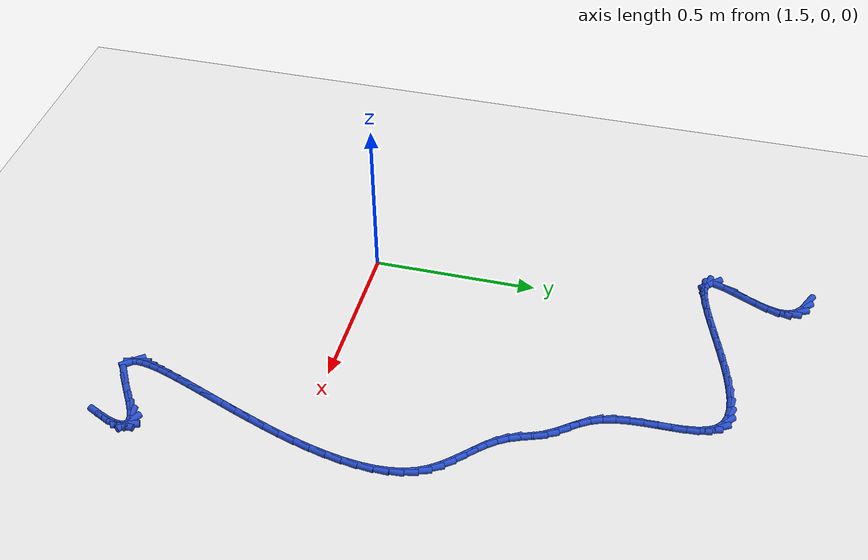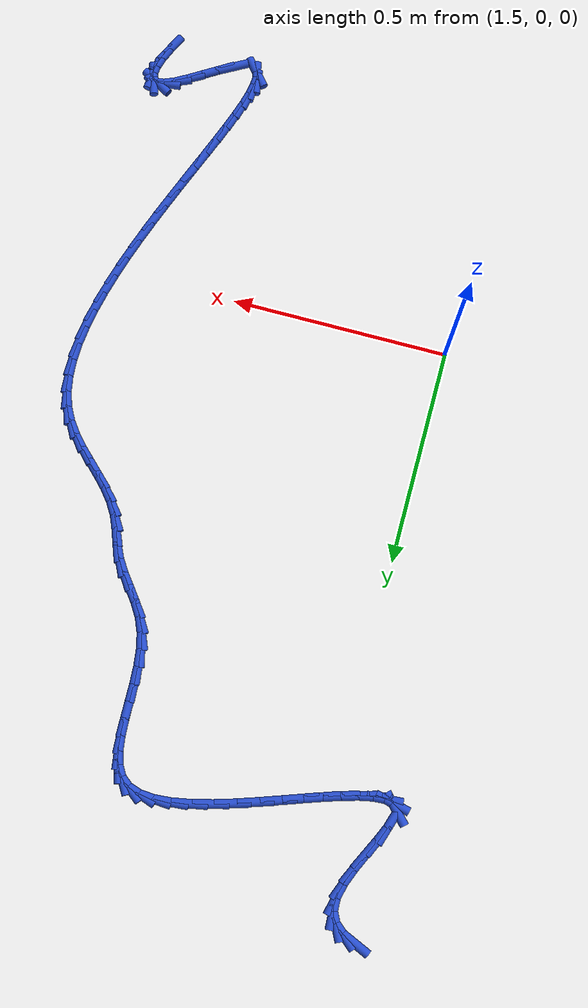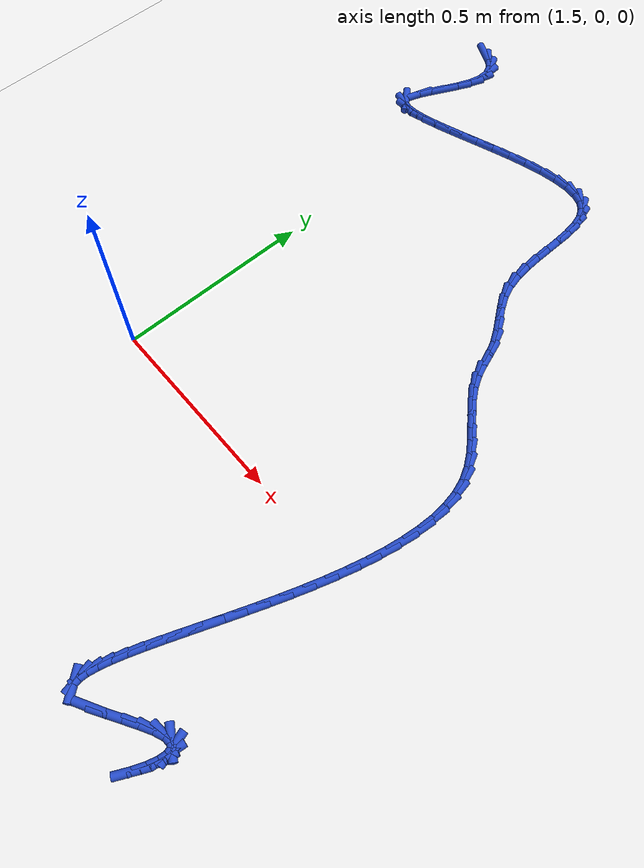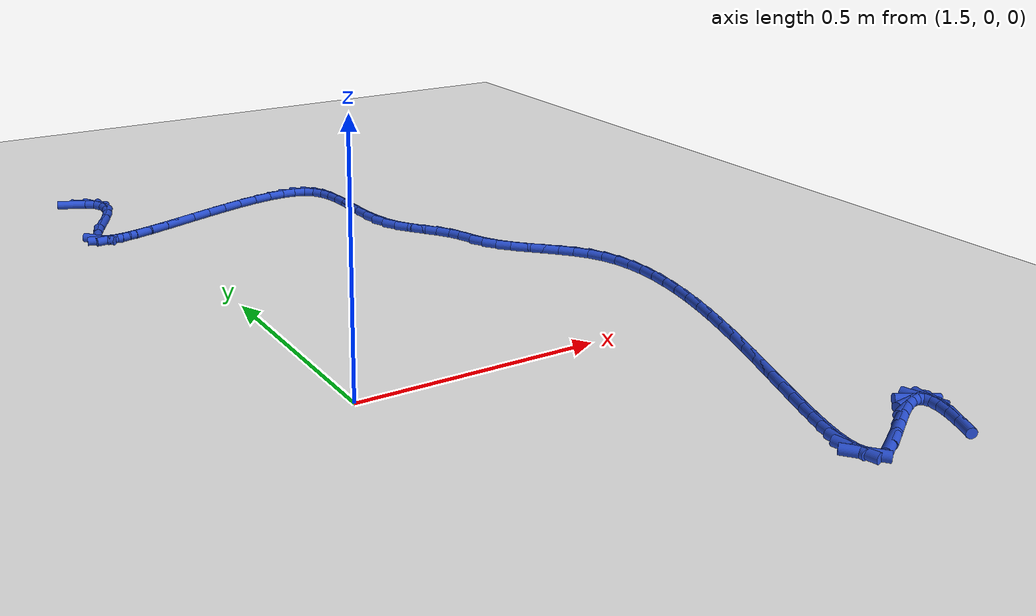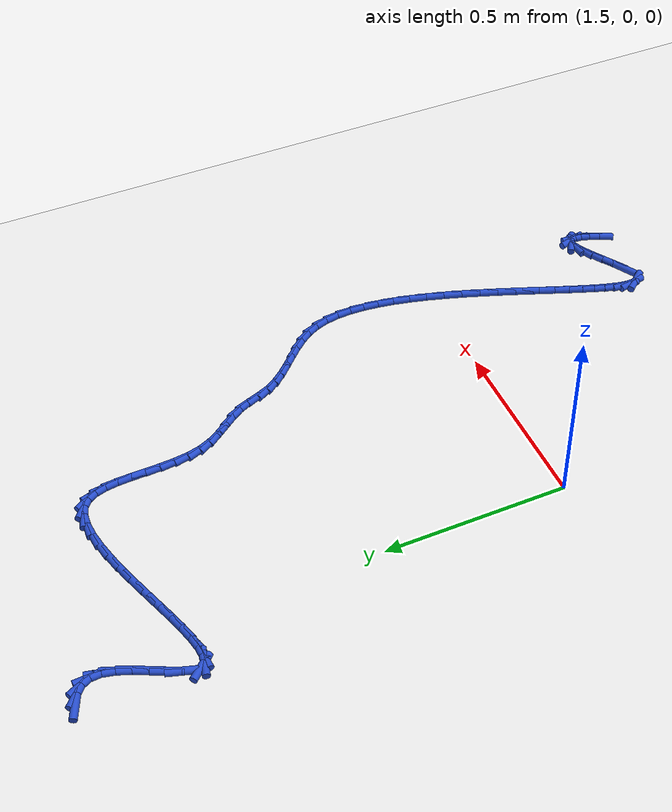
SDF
<sdf version="1.6">
 <world name="default">
  <model name="ground_plane">
   <static>1</static>
   <link name="link">
    <collision name="collision">
     <geometry><plane><normal>0 0 1</normal><size>100 100</size></plane></geometry>
     <surface><friction><ode><mu>100</mu><mu2>50</mu2></ode></friction></surface>
    </collision>
    <visual name="visual">
     <cast_shadows>0</cast_shadows>
     <geometry><plane><normal>0 0 1</normal><size>100 100</size></plane></geometry>
     <material>
      <script><uri>file://media/materials/scripts/gazebo.material</uri><name>Gazebo/WhiteGlow</name></script>
     </material>
    </visual>
   </link>
  </model>
  <model name="line">
   <link name="link_63">
    <pose>1.38146588234786 1.3162740339816177 0.01 0 1.57 -0.4110612394811182</pose>
    <collision name="collision">
     <geometry><cylinder><radius>0.01</radius><length>0.08</length></cylinder></geometry>
    </collision>
    <visual name="visual">
     <material>
      <script><name>Gazebo/Blue</name><uri>file://media/materials/scripts/gazebo.material</uri></script>
     </material>
     <geometry><cylinder><radius>0.01</radius><length>0.08</length></cylinder></geometry>
    </visual>
   </link>
   <link name="link_64">
    <pose>1.4082318114390402 1.3046069394834985 0.01 0 1.57 -0.7160803997855721</pose>
    <collision name="collision">
     <geometry><cylinder><radius>0.01</radius><length>0.08</length></cylinder></geometry>
    </collision>
    <visual name="visual">
     <material>
      <script><name>Gazebo/Blue</name><uri>file://media/materials/scripts/gazebo.material</uri></script>
     </material>
     <geometry><cylinder><radius>0.01</radius><length>0.08</length></cylinder></geometry>
    </visual>
   </link>
   <link name="link_65">
    <pose>1.4276790672948225 1.2876847760491377 0.01 0 1.57 -1.1166643688333866</pose>
    <collision name="collision">
     <geometry><cylinder><radius>0.01</radius><length>0.08</length></cylinder></geometry>
    </collision>
    <visual name="visual">
     <material>
      <script><name>Gazebo/Blue</name><uri>file://media/materials/scripts/gazebo.material</uri></script>
     </material>
     <geometry><cylinder><radius>0.01</radius><length>0.08</length></cylinder></geometry>
    </visual>
   </link>
   <link name="link_66">
    <pose>1.4385907269198408 1.2653322108594105 0.01 0 1.57 -1.52751569397766</pose>
    <collision name="collision">
     <geometry><cylinder><radius>0.01</radius><length>0.08</length></cylinder></geometry>
    </collision>
    <visual name="visual">
     <material>
      <script><name>Gazebo/Blue</name><uri>file://media/materials/scripts/gazebo.material</uri></script>
     </material>
     <geometry><cylinder><radius>0.01</radius><length>0.08</length></cylinder></geometry>
    </visual>
   </link>
   <link name="link_67">
    <pose>1.4398003749811532 1.2374007186718072 0.01 0 1.57 1.3351703215894337</pose>
    <collision name="collision">
     <geometry><cylinder><radius>0.01</radius><length>0.08</length></cylinder></geometry>
    </collision>
    <visual name="visual">
     <material>
      <script><name>Gazebo/Blue</name><uri>file://media/materials/scripts/gazebo.material</uri></script>
     </material>
     <geometry><cylinder><radius>0.01</radius><length>0.08</length></cylinder></geometry>
    </visual>
   </link>
   <link name="link_68">
    <pose>1.431949754938029 1.2047014772478541 0.01 0 1.57 1.1945654742467418</pose>
    <collision name="collision">
     <geometry><cylinder><radius>0.01</radius><length>0.08</length></cylinder></geometry>
    </collision>
    <visual name="visual">
     <material>
      <script><name>Gazebo/Blue</name><uri>file://media/materials/scripts/gazebo.material</uri></script>
     </material>
     <geometry><cylinder><radius>0.01</radius><length>0.08</length></cylinder></geometry>
    </visual>
   </link>
   <link name="link_69">
    <pose>1.4179433674102047 1.1692466511504918 0.01 0 1.57 1.1283277954971953</pose>
    <collision name="collision">
     <geometry><cylinder><radius>0.01</radius><length>0.08</length></cylinder></geometry>
    </collision>
    <visual name="visual">
     <material>
      <script><name>Gazebo/Blue</name><uri>file://media/materials/scripts/gazebo.material</uri></script>
     </material>
     <geometry><cylinder><radius>0.01</radius><length>0.08</length></cylinder></geometry>
    </visual>
   </link>
   <link name="link_70">
    <pose>1.4008285763501114 1.133124231452003 0.01 0 1.57 1.1111953745332535</pose>
    <collision name="collision">
     <geometry><cylinder><radius>0.01</radius><length>0.08</length></cylinder></geometry>
    </collision>
    <visual name="visual">
     <material>
      <script><name>Gazebo/Blue</name><uri>file://media/materials/scripts/gazebo.material</uri></script>
     </material>
     <geometry><cylinder><radius>0.01</radius><length>0.08</length></cylinder></geometry>
    </visual>
   </link>
   <link name="link_71">
    <pose>1.3836527457101795 1.0984222092246725 0.01 0 1.57 1.1438877256201196</pose>
    <collision name="collision">
     <geometry><cylinder><radius>0.01</radius><length>0.08</length></cylinder></geometry>
    </collision>
    <visual name="visual">
     <material>
      <script><name>Gazebo/Blue</name><uri>file://media/materials/scripts/gazebo.material</uri></script>
     </material>
     <geometry><cylinder><radius>0.01</radius><length>0.08</length></cylinder></geometry>
    </visual>
   </link>
   <link name="link_72">
    <pose>1.3694632394428397 1.0672285755407835 0.01 0 1.57 1.2623449579647152</pose>
    <collision name="collision">
     <geometry><cylinder><radius>0.01</radius><length>0.08</length></cylinder></geometry>
    </collision>
    <visual name="visual">
     <material>
      <script><name>Gazebo/Blue</name><uri>file://media/materials/scripts/gazebo.material</uri></script>
     </material>
     <geometry><cylinder><radius>0.01</radius><length>0.08</length></cylinder></geometry>
    </visual>
   </link>
   <link name="link_74">
    <pose>1.3619478165530037 1.0235063355506058 0.01 0 1.57 -0.8294352258811661</pose>
    <collision name="collision">
     <geometry><cylinder><radius>0.01</radius><length>0.08</length></cylinder></geometry>
    </collision>
    <visual name="visual">
     <material>
      <script><name>Gazebo/Blue</name><uri>file://media/materials/scripts/gazebo.material</uri></script>
     </material>
     <geometry><cylinder><radius>0.01</radius><length>0.08</length></cylinder></geometry>
    </visual>
   </link>
   <link name="link_75">
    <pose>1.3716715003988025 1.0128861896356736 0.01 0 1.57 -0.22243288934570224</pose>
    <collision name="collision">
     <geometry><cylinder><radius>0.01</radius><length>0.08</length></cylinder></geometry>
    </collision>
    <visual name="visual">
     <material>
      <script><name>Gazebo/Blue</name><uri>file://media/materials/scripts/gazebo.material</uri></script>
     </material>
     <geometry><cylinder><radius>0.01</radius><length>0.08</length></cylinder></geometry>
    </visual>
   </link>
   <link name="link_76">
    <pose>1.389492525996471 1.0088555126727112 0.01 0 1.57 0.06553578116865108</pose>
    <collision name="collision">
     <geometry><cylinder><radius>0.01</radius><length>0.08</length></cylinder></geometry>
    </collision>
    <visual name="visual">
     <material>
      <script><name>Gazebo/Blue</name><uri>file://media/materials/scripts/gazebo.material</uri></script>
     </material>
     <geometry><cylinder><radius>0.01</radius><length>0.08</length></cylinder></geometry>
    </visual>
   </link>
   <link name="link_77">
    <pose>1.4144144722168281 1.0104911341885925 0.01 0 1.57 0.202765433576069</pose>
    <collision name="collision">
     <geometry><cylinder><radius>0.01</radius><length>0.08</length></cylinder></geometry>
    </collision>
    <visual name="visual">
     <material>
      <script><name>Gazebo/Blue</name><uri>file://media/materials/scripts/gazebo.material</uri></script>
     </material>
     <geometry><cylinder><radius>0.01</radius><length>0.08</length></cylinder></geometry>
    </visual>
   </link>
   <link name="link_78">
    <pose>1.445440917930695 1.0168698837101922 0.01 0 1.57 0.27508718112653463</pose>
    <collision name="collision">
     <geometry><cylinder><radius>0.01</radius><length>0.08</length></cylinder></geometry>
    </collision>
    <visual name="visual">
     <material>
      <script><name>Gazebo/Blue</name><uri>file://media/materials/scripts/gazebo.material</uri></script>
     </material>
     <geometry><cylinder><radius>0.01</radius><length>0.08</length></cylinder></geometry>
    </visual>
   </link>
   <link name="link_79">
    <pose>1.4815754420088896 1.0270685907643837 0.01 0 1.57 0.3145798634617396</pose>
    <collision name="collision">
     <geometry><cylinder><radius>0.01</radius><length>0.08</length></cylinder></geometry>
    </collision>
    <visual name="visual">
     <material>
      <script><name>Gazebo/Blue</name><uri>file://media/materials/scripts/gazebo.material</uri></script>
     </material>
     <geometry><cylinder><radius>0.01</radius><length>0.08</length></cylinder></geometry>
    </visual>
   </link>
   <link name="link_80">
    <pose>1.5218216233222324 1.0401640848780418 0.01 0 1.57 0.33446686454200925</pose>
    <collision name="collision">
     <geometry><cylinder><radius>0.01</radius><length>0.08</length></cylinder></geometry>
    </collision>
    <visual name="visual">
     <material>
      <script><name>Gazebo/Blue</name><uri>file://media/materials/scripts/gazebo.material</uri></script>
     </material>
     <geometry><cylinder><radius>0.01</radius><length>0.08</length></cylinder></geometry>
    </visual>
   </link>
   <link name="link_81">
    <pose>1.5651830407415421 1.0552331955780403 0.01 0 1.57 0.3406158648645442</pose>
    <collision name="collision">
     <geometry><cylinder><radius>0.01</radius><length>0.08</length></cylinder></geometry>
    </collision>
    <visual name="visual">
     <material>
      <script><name>Gazebo/Blue</name><uri>file://media/materials/scripts/gazebo.material</uri></script>
     </material>
     <geometry><cylinder><radius>0.01</radius><length>0.08</length></cylinder></geometry>
    </visual>
   </link>
   <link name="link_82">
    <pose>1.6106632731376398 1.0713527523912543 0.01 0 1.57 0.33544919490871633</pose>
    <collision name="collision">
     <geometry><cylinder><radius>0.01</radius><length>0.08</length></cylinder></geometry>
    </collision>
    <visual name="visual">
     <material>
      <script><name>Gazebo/Blue</name><uri>file://media/materials/scripts/gazebo.material</uri></script>
     </material>
     <geometry><cylinder><radius>0.01</radius><length>0.08</length></cylinder></geometry>
    </visual>
   </link>
   <link name="link_83">
    <pose>1.6572658993813447 1.087599584844557 0.01 0 1.57 0.3193360513407432</pose>
    <collision name="collision">
     <geometry><cylinder><radius>0.01</radius><length>0.08</length></cylinder></geometry>
    </collision>
    <visual name="visual">
     <material>
      <script><name>Gazebo/Blue</name><uri>file://media/materials/scripts/gazebo.material</uri></script>
     </material>
     <geometry><cylinder><radius>0.01</radius><length>0.08</length></cylinder></geometry>
    </visual>
   </link>
   <link name="link_84">
    <pose>1.7039944983434754 1.103050522464823 0.01 0 1.57 0.29094510941008966</pose>
    <collision name="collision">
     <geometry><cylinder><radius>0.01</radius><length>0.08</length></cylinder></geometry>
    </collision>
    <visual name="visual">
     <material>
      <script><name>Gazebo/Blue</name><uri>file://media/materials/scripts/gazebo.material</uri></script>
     </material>
     <geometry><cylinder><radius>0.01</radius><length>0.08</length></cylinder></geometry>
    </visual>
   </link>
   <link name="link_85">
    <pose>1.7498526488948518 1.1167823947789264 0.01 0 1.57 0.24694207028499693</pose>
    <collision name="collision">
     <geometry><cylinder><radius>0.01</radius><length>0.08</length></cylinder></geometry>
    </collision>
    <visual name="visual">
     <material>
      <script><name>Gazebo/Blue</name><uri>file://media/materials/scripts/gazebo.material</uri></script>
     </material>
     <geometry><cylinder><radius>0.01</radius><length>0.08</length></cylinder></geometry>
    </visual>
   </link>
   <link name="link_86">
    <pose>1.7938439299062958 1.127872031313742 0.01 0 1.57 0.1809456920667266</pose>
    <collision name="collision">
     <geometry><cylinder><radius>0.01</radius><length>0.08</length></cylinder></geometry>
    </collision>
    <visual name="visual">
     <material>
      <script><name>Gazebo/Blue</name><uri>file://media/materials/scripts/gazebo.material</uri></script>
     </material>
     <geometry><cylinder><radius>0.01</radius><length>0.08</length></cylinder></geometry>
    </visual>
   </link>
   <link name="link_87">
    <pose>1.8349719202486237 1.1353962615961433 0.01 0 1.57 0.08127465651905086</pose>
    <collision name="collision">
     <geometry><cylinder><radius>0.01</radius><length>0.08</length></cylinder></geometry>
    </collision>
    <visual name="visual">
     <material>
      <script><name>Gazebo/Blue</name><uri>file://media/materials/scripts/gazebo.material</uri></script>
     </material>
     <geometry><cylinder><radius>0.01</radius><length>0.08</length></cylinder></geometry>
    </visual>
   </link>
   <link name="link_88">
    <pose>1.8722401987926565 1.138431915153005 0.01 0 1.57 -0.07317783989855912</pose>
    <collision name="collision">
     <geometry><cylinder><radius>0.01</radius><length>0.08</length></cylinder></geometry>
    </collision>
    <visual name="visual">
     <material>
      <script><name>Gazebo/Blue</name><uri>file://media/materials/scripts/gazebo.material</uri></script>
     </material>
     <geometry><cylinder><radius>0.01</radius><length>0.08</length></cylinder></geometry>
    </visual>
   </link>
   <link name="link_89">
    <pose>1.904652344409214 1.136055821511201 0.01 0 1.57 -0.31692472183013215</pose>
    <collision name="collision">
     <geometry><cylinder><radius>0.01</radius><length>0.08</length></cylinder></geometry>
    </collision>
    <visual name="visual">
     <material>
      <script><name>Gazebo/Blue</name><uri>file://media/materials/scripts/gazebo.material</uri></script>
     </material>
     <geometry><cylinder><radius>0.01</radius><length>0.08</length></cylinder></geometry>
    </visual>
   </link>
   <link name="link_90">
    <pose>1.9312119359691162 1.127344810197606 0.01 0 1.57 -0.6757893627709982</pose>
    <collision name="collision">
     <geometry><cylinder><radius>0.01</radius><length>0.08</length></cylinder></geometry>
    </collision>
    <visual name="visual">
     <material>
      <script><name>Gazebo/Blue</name><uri>file://media/materials/scripts/gazebo.material</uri></script>
     </material>
     <geometry><cylinder><radius>0.01</radius><length>0.08</length></cylinder></geometry>
    </visual>
   </link>
   <link name="link_91">
    <pose>1.9510199143903584 1.111464340828231 0.01 0 1.57 -1.0370361517819378</pose>
    <collision name="collision">
     <geometry><cylinder><radius>0.01</radius><length>0.08</length></cylinder></geometry>
    </collision>
    <visual name="visual">
     <material>
      <script><name>Gazebo/Blue</name><uri>file://media/materials/scripts/gazebo.material</uri></script>
     </material>
     <geometry><cylinder><radius>0.01</radius><length>0.08</length></cylinder></geometry>
    </visual>
   </link>
   <link name="link_92">
    <pose>1.9644502683308276 1.0887387469123089 0.01 0 1.57 -1.2861083012736771</pose>
    <collision name="collision">
     <geometry><cylinder><radius>0.01</radius><length>0.08</length></cylinder></geometry>
    </collision>
    <visual name="visual">
     <material>
      <script><name>Gazebo/Blue</name><uri>file://media/materials/scripts/gazebo.material</uri></script>
     </material>
     <geometry><cylinder><radius>0.01</radius><length>0.08</length></cylinder></geometry>
    </visual>
   </link>
   <link name="link_93">
    <pose>1.9727707484949444 1.060305966563222 0.01 0 1.57 -1.4353014730007148</pose>
    <collision name="collision">
     <geometry><cylinder><radius>0.01</radius><length>0.08</length></cylinder></geometry>
    </collision>
    <visual name="visual">
     <material>
      <script><name>Gazebo/Blue</name><uri>file://media/materials/scripts/gazebo.material</uri></script>
     </material>
     <geometry><cylinder><radius>0.01</radius><length>0.08</length></cylinder></geometry>
    </visual>
   </link>
   <link name="link_94">
    <pose>1.977267622506675 1.0273207941158207 0.01 0 1.57 -1.5169894276503961</pose>
    <collision name="collision">
     <geometry><cylinder><radius>0.01</radius><length>0.08</length></cylinder></geometry>
    </collision>
    <visual name="visual">
     <material>
      <script><name>Gazebo/Blue</name><uri>file://media/materials/scripts/gazebo.material</uri></script>
     </material>
     <geometry><cylinder><radius>0.01</radius><length>0.08</length></cylinder></geometry>
    </visual>
   </link>
   <link name="link_95">
    <pose>1.979227157989987 0.990938023904959 0.01 0 1.57 -1.5524565306420446</pose>
    <collision name="collision">
     <geometry><cylinder><radius>0.01</radius><length>0.08</length></cylinder></geometry>
    </collision>
    <visual name="visual">
     <material>
      <script><name>Gazebo/Blue</name><uri>file://media/materials/scripts/gazebo.material</uri></script>
     </material>
     <geometry><cylinder><radius>0.01</radius><length>0.08</length></cylinder></geometry>
    </visual>
   </link>
   <link name="link_96">
    <pose>1.9799356225688467 0.9523124502654885 0.01 0 1.57 -1.5520728990859043</pose>
    <collision name="collision">
     <geometry><cylinder><radius>0.01</radius><length>0.08</length></cylinder></geometry>
    </collision>
    <visual name="visual">
     <material>
      <script><name>Gazebo/Blue</name><uri>file://media/materials/scripts/gazebo.material</uri></script>
     </material>
     <geometry><cylinder><radius>0.01</radius><length>0.08</length></cylinder></geometry>
    </visual>
   </link>
   <link name="link_97">
    <pose>1.980679283867222 0.9125988675322616 0.01 0 1.57 -1.5187552760902108</pose>
    <collision name="collision">
     <geometry><cylinder><radius>0.01</radius><length>0.08</length></cylinder></geometry>
    </collision>
    <visual name="visual">
     <material>
      <script><name>Gazebo/Blue</name><uri>file://media/materials/scripts/gazebo.material</uri></script>
     </material>
     <geometry><cylinder><radius>0.01</radius><length>0.08</length></cylinder></geometry>
    </visual>
   </link>
   <link name="link_98">
    <pose>1.982744409509079 0.87295207004013 0.01 0 1.57 -1.4497814091476202</pose>
    <collision name="collision">
     <geometry><cylinder><radius>0.01</radius><length>0.08</length></cylinder></geometry>
    </collision>
    <visual name="visual">
     <material>
      <script><name>Gazebo/Blue</name><uri>file://media/materials/scripts/gazebo.material</uri></script>
     </material>
     <geometry><cylinder><radius>0.01</radius><length>0.08</length></cylinder></geometry>
    </visual>
   </link>
   <link name="link_99">
    <pose>1.9874172671183854 0.8345268521239458 0.01 0 1.57 -1.3374784938455375</pose>
    <collision name="collision">
     <geometry><cylinder><radius>0.01</radius><length>0.08</length></cylinder></geometry>
    </collision>
    <visual name="visual">
     <material>
      <script><name>Gazebo/Blue</name><uri>file://media/materials/scripts/gazebo.material</uri></script>
     </material>
     <geometry><cylinder><radius>0.01</radius><length>0.08</length></cylinder></geometry>
    </visual>
   </link>
   <link name="link_100">
    <pose>1.9959841243191079 0.7984780081185623 0.01 0 1.57 -1.1741037704281179</pose>
    <collision name="collision">
     <geometry><cylinder><radius>0.01</radius><length>0.08</length></cylinder></geometry>
    </collision>
    <visual name="visual">
     <material>
      <script><name>Gazebo/Blue</name><uri>file://media/materials/scripts/gazebo.material</uri></script>
     </material>
     <geometry><cylinder><radius>0.01</radius><length>0.08</length></cylinder></geometry>
    </visual>
   </link>
   <link name="link_101">
    <pose>2.0096356249442655 0.7658890821615515 0.01 0 1.57 -1.0172007712883406</pose>
    <collision name="collision">
     <geometry><cylinder><radius>0.01</radius><length>0.08</length></cylinder></geometry>
    </collision>
    <visual name="visual">
     <material>
      <script><name>Gazebo/Blue</name><uri>file://media/materials/scripts/gazebo.material</uri></script>
     </material>
     <geometry><cylinder><radius>0.01</radius><length>0.08</length></cylinder></geometry>
    </visual>
   </link>
   <link name="link_102">
    <pose>2.0277870808167755 0.7365208016029207 0.01 0 1.57 -0.9311847909002186</pose>
    <collision name="collision">
     <geometry><cylinder><radius>0.01</radius><length>0.08</length></cylinder></geometry>
    </collision>
    <visual name="visual">
     <material>
      <script><name>Gazebo/Blue</name><uri>file://media/materials/scripts/gazebo.material</uri></script>
     </material>
     <geometry><cylinder><radius>0.01</radius><length>0.08</length></cylinder></geometry>
    </visual>
   </link>
   <link name="link_103">
    <pose>2.0482862716049106 0.7089659106563336 0.01 0 1.57 -0.9214556130622783</pose>
    <collision name="collision">
     <geometry><cylinder><radius>0.01</radius><length>0.08</length></cylinder></geometry>
    </collision>
    <visual name="visual">
     <material>
      <script><name>Gazebo/Blue</name><uri>file://media/materials/scripts/gazebo.material</uri></script>
     </material>
     <geometry><cylinder><radius>0.01</radius><length>0.08</length></cylinder></geometry>
    </visual>
   </link>
   <link name="link_104">
    <pose>2.068927115152473 0.6817770205771035 0.01 0 1.57 -0.9894457167972587</pose>
    <collision name="collision">
     <geometry><cylinder><radius>0.01</radius><length>0.08</length></cylinder></geometry>
    </collision>
    <visual name="visual">
     <material>
      <script><name>Gazebo/Blue</name><uri>file://media/materials/scripts/gazebo.material</uri></script>
     </material>
     <geometry><cylinder><radius>0.01</radius><length>0.08</length></cylinder></geometry>
    </visual>
   </link>
   <link name="link_105">
    <pose>2.0875035293032678 0.653506742620545 0.01 0 1.57 -1.1295151932228582</pose>
    <collision name="collision">
     <geometry><cylinder><radius>0.01</radius><length>0.08</length></cylinder></geometry>
    </collision>
    <visual name="visual">
     <material>
      <script><name>Gazebo/Blue</name><uri>file://media/materials/scripts/gazebo.material</uri></script>
     </material>
     <geometry><cylinder><radius>0.01</radius><length>0.08</length></cylinder></geometry>
    </visual>
   </link>
   <link name="link_106">
    <pose>2.1019957489271084 0.6228254141699873 0.01 0 1.57 -1.2237822130924656</pose>
    <collision name="collision">
     <geometry><cylinder><radius>0.01</radius><length>0.08</length></cylinder></geometry>
    </collision>
    <visual name="visual">
     <material>
      <script><name>Gazebo/Blue</name><uri>file://media/materials/scripts/gazebo.material</uri></script>
     </material>
     <geometry><cylinder><radius>0.01</radius><length>0.08</length></cylinder></geometry>
    </visual>
   </link>
   <link name="link_107">
    <pose>2.1136891624885688 0.5904917643330045 0.01 0 1.57 -1.178182355609783</pose>
    <collision name="collision">
     <geometry><cylinder><radius>0.01</radius><length>0.08</length></cylinder></geometry>
    </collision>
    <visual name="visual">
     <material>
      <script><name>Gazebo/Blue</name><uri>file://media/materials/scripts/gazebo.material</uri></script>
     </material>
     <geometry><cylinder><radius>0.01</radius><length>0.08</length></cylinder></geometry>
    </visual>
   </link>
   <link name="link_108">
    <pose>2.126706579448025 0.5590573728631456 0.01 0 1.57 -1.0252266744634895</pose>
    <collision name="collision">
     <geometry><cylinder><radius>0.01</radius><length>0.08</length></cylinder></geometry>
    </collision>
    <visual name="visual">
     <material>
      <script><name>Gazebo/Blue</name><uri>file://media/materials/scripts/gazebo.material</uri></script>
     </material>
     <geometry><cylinder><radius>0.01</radius><length>0.08</length></cylinder></geometry>
    </visual>
   </link>
   <link name="link_109">
    <pose>2.1441028451180753 0.5303991831846511 0.01 0 1.57 -0.8928742638511952</pose>
    <collision name="collision">
     <geometry><cylinder><radius>0.01</radius><length>0.08</length></cylinder></geometry>
    </collision>
    <visual name="visual">
     <material>
      <script><name>Gazebo/Blue</name><uri>file://media/materials/scripts/gazebo.material</uri></script>
     </material>
     <geometry><cylinder><radius>0.01</radius><length>0.08</length></cylinder></geometry>
    </visual>
   </link>
   <link name="link_110">
    <pose>2.1652869809702864 0.5040910150664649 0.01 0 1.57 -0.8094926854252864</pose>
    <collision name="collision">
     <geometry><cylinder><radius>0.01</radius><length>0.08</length></cylinder></geometry>
    </collision>
    <visual name="visual">
     <material>
      <script><name>Gazebo/Blue</name><uri>file://media/materials/scripts/gazebo.material</uri></script>
     </material>
     <geometry><cylinder><radius>0.01</radius><length>0.08</length></cylinder></geometry>
    </visual>
   </link>
   <link name="link_111">
    <pose>2.1889536889969627 0.4792554415465158 0.01 0 1.57 -0.773102076718726</pose>
    <collision name="collision">
     <geometry><cylinder><radius>0.01</radius><length>0.08</length></cylinder></geometry>
    </collision>
    <visual name="visual">
     <material>
      <script><name>Gazebo/Blue</name><uri>file://media/materials/scripts/gazebo.material</uri></script>
     </material>
     <geometry><cylinder><radius>0.01</radius><length>0.08</length></cylinder></geometry>
    </visual>
   </link>
   <link name="link_112">
    <pose>2.2137976711904117 0.4550150356627312 0.01 0 1.57 -0.7814725429000222</pose>
    <collision name="collision">
     <geometry><cylinder><radius>0.01</radius><length>0.08</length></cylinder></geometry>
    </collision>
    <visual name="visual">
     <material>
      <script><name>Gazebo/Blue</name><uri>file://media/materials/scripts/gazebo.material</uri></script>
     </material>
     <geometry><cylinder><radius>0.01</radius><length>0.08</length></cylinder></geometry>
    </visual>
   </link>
   <link name="link_113">
    <pose>2.2385136295429398 0.4304923704530395 0.01 0 1.57 -0.8343677760602719</pose>
    <collision name="collision">
     <geometry><cylinder><radius>0.01</radius><length>0.08</length></cylinder></geometry>
    </collision>
    <visual name="visual">
     <material>
      <script><name>Gazebo/Blue</name><uri>file://media/materials/scripts/gazebo.material</uri></script>
     </material>
     <geometry><cylinder><radius>0.01</radius><length>0.08</length></cylinder></geometry>
    </visual>
   </link>
   <link name="link_114">
    <pose>2.2617962660468516 0.40481001895536833 0.01 0 1.57 -0.9329894824157687</pose>
    <collision name="collision">
     <geometry><cylinder><radius>0.01</radius><length>0.08</length></cylinder></geometry>
    </collision>
    <visual name="visual">
     <material>
      <script><name>Gazebo/Blue</name><uri>file://media/materials/scripts/gazebo.material</uri></script>
     </material>
     <geometry><cylinder><radius>0.01</radius><length>0.08</length></cylinder></geometry>
    </visual>
   </link>
   <link name="link_115">
    <pose>2.282340282694453 0.37709055420764526 0.01 0 1.57 -1.0767232830797087</pose>
    <collision name="collision">
     <geometry><cylinder><radius>0.01</radius><length>0.08</length></cylinder></geometry>
    </collision>
    <visual name="visual">
     <material>
      <script><name>Gazebo/Blue</name><uri>file://media/materials/scripts/gazebo.material</uri></script>
     </material>
     <geometry><cylinder><radius>0.01</radius><length>0.08</length></cylinder></geometry>
    </visual>
   </link>
   <link name="link_116">
    <pose>2.2988406233726195 0.346456728218105 0.01 0 1.57 -1.2452394849076576</pose>
    <collision name="collision">
     <geometry><cylinder><radius>0.01</radius><length>0.08</length></cylinder></geometry>
    </collision>
    <visual name="visual">
     <material>
      <script><name>Gazebo/Blue</name><uri>file://media/materials/scripts/gazebo.material</uri></script>
     </material>
     <geometry><cylinder><radius>0.01</radius><length>0.08</length></cylinder></geometry>
    </visual>
   </link>
   <link name="link_117">
    <pose>2.310367756832476 0.31230913221983514 0.01 0 1.57 -1.3921171820196896</pose>
    <collision name="collision">
     <geometry><cylinder><radius>0.01</radius><length>0.08</length></cylinder></geometry>
    </collision>
    <visual name="visual">
     <material>
      <script><name>Gazebo/Blue</name><uri>file://media/materials/scripts/gazebo.material</uri></script>
     </material>
     <geometry><cylinder><radius>0.01</radius><length>0.08</length></cylinder></geometry>
    </visual>
   </link>
   <link name="link_118">
    <pose>2.317126303926747 0.27488748148477077 0.01 0 1.57 -1.5111163441229656</pose>
    <collision name="collision">
     <geometry><cylinder><radius>0.01</radius><length>0.08</length></cylinder></geometry>
    </collision>
    <visual name="visual">
     <material>
      <script><name>Gazebo/Blue</name><uri>file://media/materials/scripts/gazebo.material</uri></script>
     </material>
     <geometry><cylinder><radius>0.01</radius><length>0.08</length></cylinder></geometry>
    </visual>
   </link>
   <link name="link_119">
    <pose>2.319534158919023 0.23458928568089898 0.01 0 1.57 1.5351629460759149</pose>
    <collision name="collision">
     <geometry><cylinder><radius>0.01</radius><length>0.08</length></cylinder></geometry>
    </collision>
    <visual name="visual">
     <material>
      <script><name>Gazebo/Blue</name><uri>file://media/materials/scripts/gazebo.material</uri></script>
     </material>
     <geometry><cylinder><radius>0.01</radius><length>0.08</length></cylinder></geometry>
    </visual>
   </link>
   <link name="link_120">
    <pose>2.3180092160728916 0.19181205447620497 0.01 0 1.57 1.4589162608870774</pose>
    <collision name="collision">
     <geometry><cylinder><radius>0.01</radius><length>0.08</length></cylinder></geometry>
    </collision>
    <visual name="visual">
     <material>
      <script><name>Gazebo/Blue</name><uri>file://media/materials/scripts/gazebo.material</uri></script>
     </material>
     <geometry><cylinder><radius>0.01</radius><length>0.08</length></cylinder></geometry>
    </visual>
   </link>
   <link name="link_121">
    <pose>2.31296936965194 0.14695329753867484 0.01 0 1.57 1.3977201433234263</pose>
    <collision name="collision">
     <geometry><cylinder><radius>0.01</radius><length>0.08</length></cylinder></geometry>
    </collision>
    <visual name="visual">
     <material>
      <script><name>Gazebo/Blue</name><uri>file://media/materials/scripts/gazebo.material</uri></script>
     </material>
     <geometry><cylinder><radius>0.01</radius><length>0.08</length></cylinder></geometry>
    </visual>
   </link>
   <link name="link_122">
    <pose>2.3048325139197576 0.10041052453629452 0.01 0 1.57 1.3483999149790504</pose>
    <collision name="collision">
     <geometry><cylinder><radius>0.01</radius><length>0.08</length></cylinder></geometry>
    </collision>
    <visual name="visual">
     <material>
      <script><name>Gazebo/Blue</name><uri>file://media/materials/scripts/gazebo.material</uri></script>
     </material>
     <geometry><cylinder><radius>0.01</radius><length>0.08</length></cylinder></geometry>
    </visual>
   </link>
   <link name="link_123">
    <pose>2.294016543139933 0.05258124513704909 0.01 0 1.57 1.308553281446863</pose>
    <collision name="collision">
     <geometry><cylinder><radius>0.01</radius><length>0.08</length></cylinder></geometry>
    </collision>
    <visual name="visual">
     <material>
      <script><name>Gazebo/Blue</name><uri>file://media/materials/scripts/gazebo.material</uri></script>
     </material>
     <geometry><cylinder><radius>0.01</radius><length>0.08</length></cylinder></geometry>
    </visual>
   </link>
   <link name="link_124">
    <pose>2.2809393515760537 0.00386296900892592 0.01 0 1.57 1.2764041503940442</pose>
    <collision name="collision">
     <geometry><cylinder><radius>0.01</radius><length>0.08</length></cylinder></geometry>
    </collision>
    <visual name="visual">
     <material>
      <script><name>Gazebo/Blue</name><uri>file://media/materials/scripts/gazebo.material</uri></script>
     </material>
     <geometry><cylinder><radius>0.01</radius><length>0.08</length></cylinder></geometry>
    </visual>
   </link>
   <link name="link_125">
    <pose>2.266018833491709 -0.04534679418008973 0.01 0 1.57 1.2506645103969396</pose>
    <collision name="collision">
     <geometry><cylinder><radius>0.01</radius><length>0.08</length></cylinder></geometry>
    </collision>
    <visual name="visual">
     <material>
      <script><name>Gazebo/Blue</name><uri>file://media/materials/scripts/gazebo.material</uri></script>
     </material>
     <geometry><cylinder><radius>0.01</radius><length>0.08</length></cylinder></geometry>
    </visual>
   </link>
   <link name="link_126">
    <pose>2.249672883150485 -0.09465053476201278 0.01 0 1.57 1.2304280265725156</pose>
    <collision name="collision">
     <geometry><cylinder><radius>0.01</radius><length>0.08</length></cylinder></geometry>
    </collision>
    <visual name="visual">
     <material>
      <script><name>Gazebo/Blue</name><uri>file://media/materials/scripts/gazebo.material</uri></script>
     </material>
     <geometry><cylinder><radius>0.01</radius><length>0.08</length></cylinder></geometry>
    </visual>
   </link>
   <link name="link_127">
    <pose>2.2323193948159723 -0.14365074306885559 0.01 0 1.57 1.2150978248597553</pose>
    <collision name="collision">
     <geometry><cylinder><radius>0.01</radius><length>0.08</length></cylinder></geometry>
    </collision>
    <visual name="visual">
     <material>
      <script><name>Gazebo/Blue</name><uri>file://media/materials/scripts/gazebo.material</uri></script>
     </material>
     <geometry><cylinder><radius>0.01</radius><length>0.08</length></cylinder></geometry>
    </visual>
   </link>
   <link name="link_128">
    <pose>2.214376262751759 -0.19194990943263332 0.01 0 1.57 1.204346188685098</pose>
    <collision name="collision">
     <geometry><cylinder><radius>0.01</radius><length>0.08</length></cylinder></geometry>
    </collision>
    <visual name="visual">
     <material>
      <script><name>Gazebo/Blue</name><uri>file://media/materials/scripts/gazebo.material</uri></script>
     </material>
     <geometry><cylinder><radius>0.01</radius><length>0.08</length></cylinder></geometry>
    </visual>
   </link>
   <link name="link_129">
    <pose>2.1962613812214324 -0.23915052418535984 0.01 0 1.57 1.1981056590028647</pose>
    <collision name="collision">
     <geometry><cylinder><radius>0.01</radius><length>0.08</length></cylinder></geometry>
    </collision>
    <visual name="visual">
     <material>
      <script><name>Gazebo/Blue</name><uri>file://media/materials/scripts/gazebo.material</uri></script>
     </material>
     <geometry><cylinder><radius>0.01</radius><length>0.08</length></cylinder></geometry>
    </visual>
   </link>
   <link name="link_130">
    <pose>2.178392644488582 -0.28485507765904927 0.01 0 1.57 1.1965963820005372</pose>
    <collision name="collision">
     <geometry><cylinder><radius>0.01</radius><length>0.08</length></cylinder></geometry>
    </collision>
    <visual name="visual">
     <material>
      <script><name>Gazebo/Blue</name><uri>file://media/materials/scripts/gazebo.material</uri></script>
     </material>
     <geometry><cylinder><radius>0.01</radius><length>0.08</length></cylinder></geometry>
    </visual>
   </link>
   <link name="link_131">
    <pose>2.1611879468167947 -0.3286660601857156 0.01 0 1.57 1.2004043943137548</pose>
    <collision name="collision">
     <geometry><cylinder><radius>0.01</radius><length>0.08</length></cylinder></geometry>
    </collision>
    <visual name="visual">
     <material>
      <script><name>Gazebo/Blue</name><uri>file://media/materials/scripts/gazebo.material</uri></script>
     </material>
     <geometry><cylinder><radius>0.01</radius><length>0.08</length></cylinder></geometry>
    </visual>
   </link>
   <link name="link_132">
    <pose>2.14506518246966 -0.3701859620973732 0.01 0 1.57 1.2106447475881221</pose>
    <collision name="collision">
     <geometry><cylinder><radius>0.01</radius><length>0.08</length></cylinder></geometry>
    </collision>
    <visual name="visual">
     <material>
      <script><name>Gazebo/Blue</name><uri>file://media/materials/scripts/gazebo.material</uri></script>
     </material>
     <geometry><cylinder><radius>0.01</radius><length>0.08</length></cylinder></geometry>
    </visual>
   </link>
   <link name="link_133">
    <pose>2.1304422457107646 -0.40901727372603675 0.01 0 1.57 1.2292849945272655</pose>
    <collision name="collision">
     <geometry><cylinder><radius>0.01</radius><length>0.08</length></cylinder></geometry>
    </collision>
    <visual name="visual">
     <material>
      <script><name>Gazebo/Blue</name><uri>file://media/materials/scripts/gazebo.material</uri></script>
     </material>
     <geometry><cylinder><radius>0.01</radius><length>0.08</length></cylinder></geometry>
    </visual>
   </link>
   <link name="link_134">
    <pose>2.1177370308036996 -0.44476248540371877 0.01 0 1.57 1.259803717543585</pose>
    <collision name="collision">
     <geometry><cylinder><radius>0.01</radius><length>0.08</length></cylinder></geometry>
    </collision>
    <visual name="visual">
     <material>
      <script><name>Gazebo/Blue</name><uri>file://media/materials/scripts/gazebo.material</uri></script>
     </material>
     <geometry><cylinder><radius>0.01</radius><length>0.08</length></cylinder></geometry>
    </visual>
   </link>
   <link name="link_135">
    <pose>2.1073674320120506 -0.47702408746243385 0.01 0 1.57 1.3086169089596953</pose>
    <collision name="collision">
     <geometry><cylinder><radius>0.01</radius><length>0.08</length></cylinder></geometry>
    </collision>
    <visual name="visual">
     <material>
      <script><name>Gazebo/Blue</name><uri>file://media/materials/scripts/gazebo.material</uri></script>
     </material>
     <geometry><cylinder><radius>0.01</radius><length>0.08</length></cylinder></geometry>
    </visual>
   </link>
   <link name="link_136">
    <pose>2.0997513435994075 -0.5054045702341965 0.01 0 1.57 1.3884326522062613</pose>
    <collision name="collision">
     <geometry><cylinder><radius>0.01</radius><length>0.08</length></cylinder></geometry>
    </collision>
    <visual name="visual">
     <material>
      <script><name>Gazebo/Blue</name><uri>file://media/materials/scripts/gazebo.material</uri></script>
     </material>
     <geometry><cylinder><radius>0.01</radius><length>0.08</length></cylinder></geometry>
    </visual>
   </link>
   <link name="link_137">
    <pose>2.095306659829358 -0.5295064240510206 0.01 0 1.57 1.526791117979028</pose>
    <collision name="collision">
     <geometry><cylinder><radius>0.01</radius><length>0.08</length></cylinder></geometry>
    </collision>
    <visual name="visual">
     <material>
      <script><name>Gazebo/Blue</name><uri>file://media/materials/scripts/gazebo.material</uri></script>
     </material>
     <geometry><cylinder><radius>0.01</radius><length>0.08</length></cylinder></geometry>
    </visual>
   </link>
   <link name="link_138">
    <pose>2.094451274965491 -0.5489321392449203 0.01 0 1.57 -1.3546213118208907</pose>
    <collision name="collision">
     <geometry><cylinder><radius>0.01</radius><length>0.08</length></cylinder></geometry>
    </collision>
    <visual name="visual">
     <material>
      <script><name>Gazebo/Blue</name><uri>file://media/materials/scripts/gazebo.material</uri></script>
     </material>
     <geometry><cylinder><radius>0.01</radius><length>0.08</length></cylinder></geometry>
    </visual>
   </link>
   <link name="link_139">
    <pose>2.0976030832713937 -0.5632842061479095 0.01 0 1.57 -0.8644667029283083</pose>
    <collision name="collision">
     <geometry><cylinder><radius>0.01</radius><length>0.08</length></cylinder></geometry>
    </collision>
    <visual name="visual">
     <material>
      <script><name>Gazebo/Blue</name><uri>file://media/materials/scripts/gazebo.material</uri></script>
     </material>
     <geometry><cylinder><radius>0.01</radius><length>0.08</length></cylinder></geometry>
    </visual>
   </link>
   <link name="link_143">
    <pose>2.1586398460961775 -0.5620061259292134 0.01 0 1.57 0.5126815838449156</pose>
    <collision name="collision">
     <geometry><cylinder><radius>0.01</radius><length>0.08</length></cylinder></geometry>
    </collision>
    <visual name="visual">
     <material>
      <script><name>Gazebo/Blue</name><uri>file://media/materials/scripts/gazebo.material</uri></script>
     </material>
     <geometry><cylinder><radius>0.01</radius><length>0.08</length></cylinder></geometry>
    </visual>
   </link>
   <link name="link_144">
    <pose>2.1874092030826544 -0.5458122974561634 0.01 0 1.57 0.5534258584082278</pose>
    <collision name="collision">
     <geometry><cylinder><radius>0.01</radius><length>0.08</length></cylinder></geometry>
    </collision>
    <visual name="visual">
     <material>
      <script><name>Gazebo/Blue</name><uri>file://media/materials/scripts/gazebo.material</uri></script>
     </material>
     <geometry><cylinder><radius>0.01</radius><length>0.08</length></cylinder></geometry>
    </visual>
   </link>
   <link name="link_145">
    <pose>2.219163968387908 -0.5261932893911365 0.01 0 1.57 0.5535505777711826</pose>
    <collision name="collision">
     <geometry><cylinder><radius>0.01</radius><length>0.08</length></cylinder></geometry>
    </collision>
    <visual name="visual">
     <material>
      <script><name>Gazebo/Blue</name><uri>file://media/materials/scripts/gazebo.material</uri></script>
     </material>
     <geometry><cylinder><radius>0.01</radius><length>0.08</length></cylinder></geometry>
    </visual>
   </link>
   <link name="link_146">
    <pose>2.251056806010215 -0.5064834798762492 0.01 0 1.57 0.5137022802926658</pose>
    <collision name="collision">
     <geometry><cylinder><radius>0.01</radius><length>0.08</length></cylinder></geometry>
    </collision>
    <visual name="visual">
     <material>
      <script><name>Gazebo/Blue</name><uri>file://media/materials/scripts/gazebo.material</uri></script>
     </material>
     <geometry><cylinder><radius>0.01</radius><length>0.08</length></cylinder></geometry>
    </visual>
   </link>
   <link name="link_147">
    <pose>2.280240379947851 -0.49001724705361765 0.01 0 1.57 0.3972905544552104</pose>
    <collision name="collision">
     <geometry><cylinder><radius>0.01</radius><length>0.08</length></cylinder></geometry>
    </collision>
    <visual name="visual">
     <material>
      <script><name>Gazebo/Blue</name><uri>file://media/materials/scripts/gazebo.material</uri></script>
     </material>
     <geometry><cylinder><radius>0.01</radius><length>0.08</length></cylinder></geometry>
    </visual>
   </link>
   <link name="link_148">
    <pose>2.303899016186105 -0.4800900100581754 0.01 0 1.57 0.10422776257402515</pose>
    <collision name="collision">
     <geometry><cylinder><radius>0.01</radius><length>0.08</length></cylinder></geometry>
    </collision>
    <visual name="visual">
     <material>
      <script><name>Gazebo/Blue</name><uri>file://media/materials/scripts/gazebo.material</uri></script>
     </material>
     <geometry><cylinder><radius>0.01</radius><length>0.08</length></cylinder></geometry>
    </visual>
   </link>
   <link name="link_149">
    <pose>2.320557836862995 -0.47834738357885054 0.01 0 1.57 -0.5306018203244892</pose>
    <collision name="collision">
     <geometry><cylinder><radius>0.01</radius><length>0.08</length></cylinder></geometry>
    </collision>
    <visual name="visual">
     <material>
      <script><name>Gazebo/Blue</name><uri>file://media/materials/scripts/gazebo.material</uri></script>
     </material>
     <geometry><cylinder><radius>0.01</radius><length>0.08</length></cylinder></geometry>
    </visual>
   </link>
   <link name="link_150">
    <pose>2.3305501168918195 -0.4842101112966633 0.01 0 1.57 -1.2816982594023583</pose>
    <collision name="collision">
     <geometry><cylinder><radius>0.01</radius><length>0.08</length></cylinder></geometry>
    </collision>
    <visual name="visual">
     <material>
      <script><name>Gazebo/Blue</name><uri>file://media/materials/scripts/gazebo.material</uri></script>
     </material>
     <geometry><cylinder><radius>0.01</radius><length>0.08</length></cylinder></geometry>
    </visual>
   </link>
   <link name="link_151">
    <pose>2.3343368926510255 -0.496941730718675 0.01 0 1.57 1.46738750549402</pose>
    <collision name="collision">
     <geometry><cylinder><radius>0.01</radius><length>0.08</length></cylinder></geometry>
    </collision>
    <visual name="visual">
     <material>
      <script><name>Gazebo/Blue</name><uri>file://media/materials/scripts/gazebo.material</uri></script>
     </material>
     <geometry><cylinder><radius>0.01</radius><length>0.08</length></cylinder></geometry>
    </visual>
   </link>
   <link name="link_152">
    <pose>2.3323792005190604 -0.5158057793519477 0.01 0 1.57 1.2807348276064792</pose>
    <collision name="collision">
     <geometry><cylinder><radius>0.01</radius><length>0.08</length></cylinder></geometry>
    </collision>
    <visual name="visual">
     <material>
      <script><name>Gazebo/Blue</name><uri>file://media/materials/scripts/gazebo.material</uri></script>
     </material>
     <geometry><cylinder><radius>0.01</radius><length>0.08</length></cylinder></geometry>
    </visual>
   </link>
   <link name="link_153">
    <pose>2.3251380768743712 -0.5400657947035433 0.01 0 1.57 1.175601066393908</pose>
    <collision name="collision">
     <geometry><cylinder><radius>0.01</radius><length>0.08</length></cylinder></geometry>
    </collision>
    <visual name="visual">
     <material>
      <script><name>Gazebo/Blue</name><uri>file://media/materials/scripts/gazebo.material</uri></script>
     </material>
     <geometry><cylinder><radius>0.01</radius><length>0.08</length></cylinder></geometry>
    </visual>
   </link>
   <link name="link_154">
    <pose>2.313074558095404 -0.5689853142805232 0.01 0 1.57 1.1070611065391964</pose>
    <collision name="collision">
     <geometry><cylinder><radius>0.01</radius><length>0.08</length></cylinder></geometry>
    </collision>
    <visual name="visual">
     <material>
      <script><name>Gazebo/Blue</name><uri>file://media/materials/scripts/gazebo.material</uri></script>
     </material>
     <geometry><cylinder><radius>0.01</radius><length>0.08</length></cylinder></geometry>
    </visual>
   </link>
  </model>
 </world>
</sdf>
